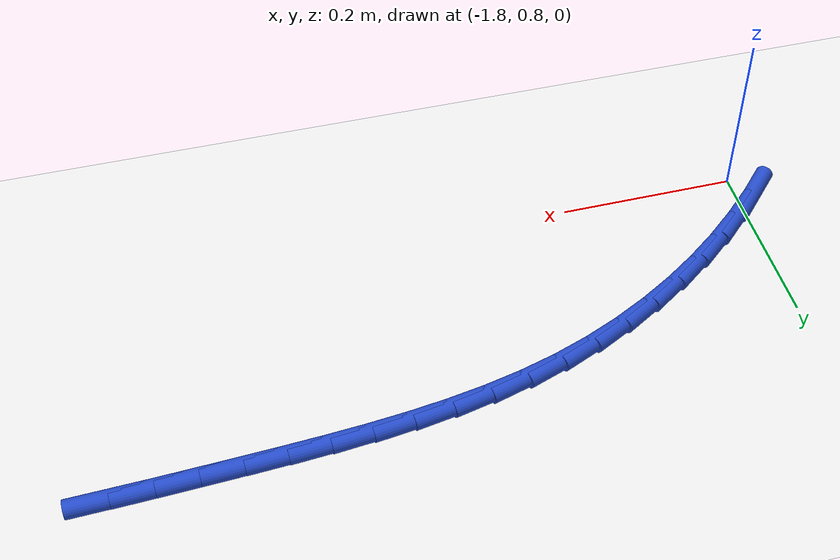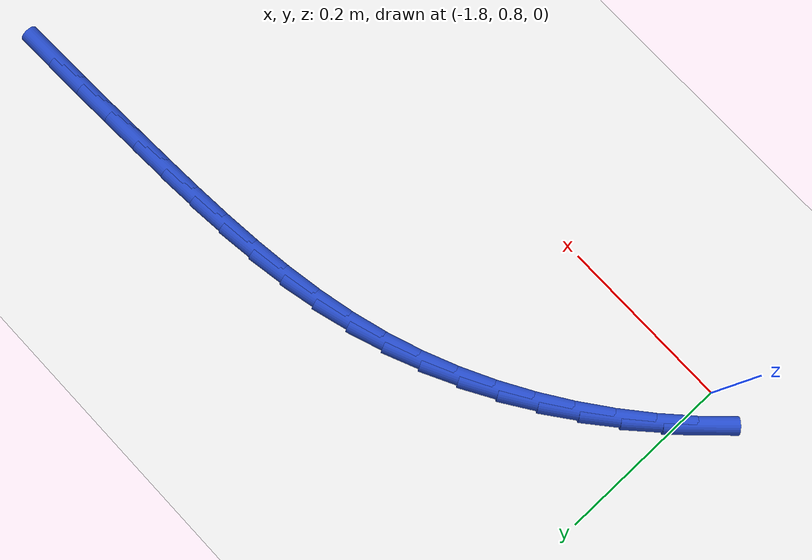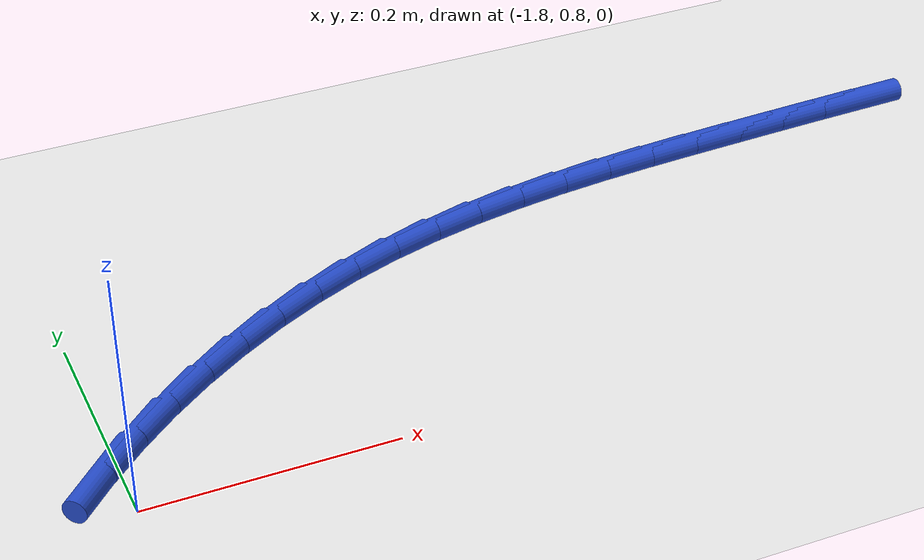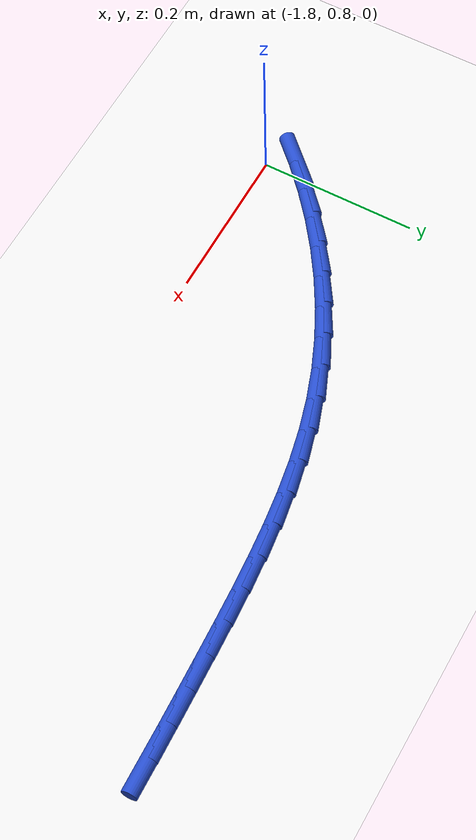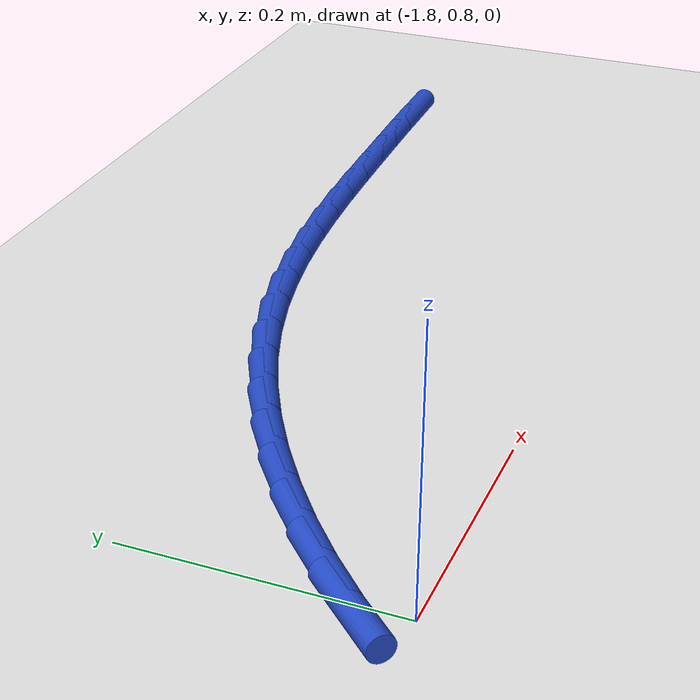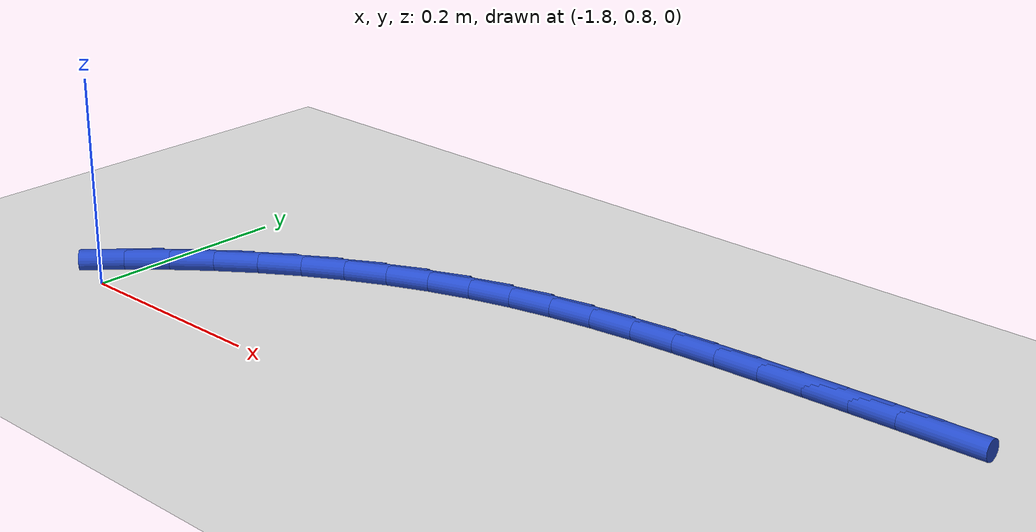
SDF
<sdf version="1.6">
 <world name="default">
  <model name="ground_plane">
   <static>1</static>
   <link name="link">
    <collision name="collision">
     <geometry><plane><normal>0 0 1</normal><size>100 100</size></plane></geometry>
     <surface><friction><ode><mu>100</mu><mu2>50</mu2></ode></friction></surface>
    </collision>
    <visual name="visual">
     <cast_shadows>0</cast_shadows>
     <geometry><plane><normal>0 0 1</normal><size>100 100</size></plane></geometry>
     <material>
      <script><uri>file://media/materials/scripts/gazebo.material</uri><name>Gazebo/WhiteGlow</name></script>
     </material>
    </visual>
   </link>
  </model>
  <model name="line">
   <link name="link_39">
    <pose>-1.0564956041749847 1.0645957667247128 0.01 0 1.57 0.029237892884742614</pose>
    <collision name="collision">
     <geometry><cylinder><radius>0.01</radius><length>0.08</length></cylinder></geometry>
    </collision>
    <visual name="visual">
     <material>
      <script><name>Gazebo/Blue</name><uri>file://media/materials/scripts/gazebo.material</uri></script>
     </material>
     <geometry><cylinder><radius>0.01</radius><length>0.08</length></cylinder></geometry>
    </visual>
   </link>
   <link name="link_40">
    <pose>-1.0999999879161808 1.0633234276373265 0.01 0 1.57 0.03891584807647052</pose>
    <collision name="collision">
     <geometry><cylinder><radius>0.01</radius><length>0.08</length></cylinder></geometry>
    </collision>
    <visual name="visual">
     <material>
      <script><name>Gazebo/Blue</name><uri>file://media/materials/scripts/gazebo.material</uri></script>
     </material>
     <geometry><cylinder><radius>0.01</radius><length>0.08</length></cylinder></geometry>
    </visual>
   </link>
   <link name="link_41">
    <pose>-1.1435478818544216 1.0616278683835996 0.01 0 1.57 0.04297399263906294</pose>
    <collision name="collision">
     <geometry><cylinder><radius>0.01</radius><length>0.08</length></cylinder></geometry>
    </collision>
    <visual name="visual">
     <material>
      <script><name>Gazebo/Blue</name><uri>file://media/materials/scripts/gazebo.material</uri></script>
     </material>
     <geometry><cylinder><radius>0.01</radius><length>0.08</length></cylinder></geometry>
    </visual>
   </link>
   <link name="link_42">
    <pose>-1.1870667485631647 1.0597565368148603 0.01 0 1.57 0.04549724654629769</pose>
    <collision name="collision">
     <geometry><cylinder><radius>0.01</radius><length>0.08</length></cylinder></geometry>
    </collision>
    <visual name="visual">
     <material>
      <script><name>Gazebo/Blue</name><uri>file://media/materials/scripts/gazebo.material</uri></script>
     </material>
     <geometry><cylinder><radius>0.01</radius><length>0.08</length></cylinder></geometry>
    </visual>
   </link>
   <link name="link_43">
    <pose>-1.2304833298310858 1.0577798378025063 0.01 0 1.57 0.054688654376996035</pose>
    <collision name="collision">
     <geometry><cylinder><radius>0.01</radius><length>0.08</length></cylinder></geometry>
    </collision>
    <visual name="visual">
     <material>
      <script><name>Gazebo/Blue</name><uri>file://media/materials/scripts/gazebo.material</uri></script>
     </material>
     <geometry><cylinder><radius>0.01</radius><length>0.08</length></cylinder></geometry>
    </visual>
   </link>
   <link name="link_44">
    <pose>-1.27372292047146 1.055412762448987 0.01 0 1.57 0.071640880850923</pose>
    <collision name="collision">
     <geometry><cylinder><radius>0.01</radius><length>0.08</length></cylinder></geometry>
    </collision>
    <visual name="visual">
     <material>
      <script><name>Gazebo/Blue</name><uri>file://media/materials/scripts/gazebo.material</uri></script>
     </material>
     <geometry><cylinder><radius>0.01</radius><length>0.08</length></cylinder></geometry>
    </visual>
   </link>
   <link name="link_45">
    <pose>-1.31671064228105 1.052327804623942 0.01 0 1.57 0.09651708608216648</pose>
    <collision name="collision">
     <geometry><cylinder><radius>0.01</radius><length>0.08</length></cylinder></geometry>
    </collision>
    <visual name="visual">
     <material>
      <script><name>Gazebo/Blue</name><uri>file://media/materials/scripts/gazebo.material</uri></script>
     </material>
     <geometry><cylinder><radius>0.01</radius><length>0.08</length></cylinder></geometry>
    </visual>
   </link>
   <link name="link_46">
    <pose>-1.359371617056619 1.048197458197012 0.01 0 1.57 0.12949666245008654</pose>
    <collision name="collision">
     <geometry><cylinder><radius>0.01</radius><length>0.08</length></cylinder></geometry>
    </collision>
    <visual name="visual">
     <material>
      <script><name>Gazebo/Blue</name><uri>file://media/materials/scripts/gazebo.material</uri></script>
     </material>
     <geometry><cylinder><radius>0.01</radius><length>0.08</length></cylinder></geometry>
    </visual>
   </link>
   <link name="link_47">
    <pose>-1.4016309665949298 1.0426942170378364 0.01 0 1.57 0.17072830940406278</pose>
    <collision name="collision">
     <geometry><cylinder><radius>0.01</radius><length>0.08</length></cylinder></geometry>
    </collision>
    <visual name="visual">
     <material>
      <script><name>Gazebo/Blue</name><uri>file://media/materials/scripts/gazebo.material</uri></script>
     </material>
     <geometry><cylinder><radius>0.01</radius><length>0.08</length></cylinder></geometry>
    </visual>
   </link>
   <link name="link_48">
    <pose>-1.443413812692747 1.0354905750160561 0.01 0 1.57 0.22026313822881807</pose>
    <collision name="collision">
     <geometry><cylinder><radius>0.01</radius><length>0.08</length></cylinder></geometry>
    </collision>
    <visual name="visual">
     <material>
      <script><name>Gazebo/Blue</name><uri>file://media/materials/scripts/gazebo.material</uri></script>
     </material>
     <geometry><cylinder><radius>0.01</radius><length>0.08</length></cylinder></geometry>
    </visual>
   </link>
   <link name="link_49">
    <pose>-1.4846452771468315 1.0262590260013114 0.01 0 1.57 0.27796891463724066</pose>
    <collision name="collision">
     <geometry><cylinder><radius>0.01</radius><length>0.08</length></cylinder></geometry>
    </collision>
    <visual name="visual">
     <material>
      <script><name>Gazebo/Blue</name><uri>file://media/materials/scripts/gazebo.material</uri></script>
     </material>
     <geometry><cylinder><radius>0.01</radius><length>0.08</length></cylinder></geometry>
    </visual>
   </link>
   <link name="link_50">
    <pose>-1.5252504817539485 1.0146720638632427 0.01 0 1.57 0.34258813516011516</pose>
    <collision name="collision">
     <geometry><cylinder><radius>0.01</radius><length>0.08</length></cylinder></geometry>
    </collision>
    <visual name="visual">
     <material>
      <script><name>Gazebo/Blue</name><uri>file://media/materials/scripts/gazebo.material</uri></script>
     </material>
     <geometry><cylinder><radius>0.01</radius><length>0.08</length></cylinder></geometry>
    </visual>
   </link>
   <link name="link_51">
    <pose>-1.5651508058358794 1.0004415517963638 0.01 0 1.57 0.40736102534026614</pose>
    <collision name="collision">
     <geometry><cylinder><radius>0.01</radius><length>0.08</length></cylinder></geometry>
    </collision>
    <visual name="visual">
     <material>
      <script><name>Gazebo/Blue</name><uri>file://media/materials/scripts/gazebo.material</uri></script>
     </material>
     <geometry><cylinder><radius>0.01</radius><length>0.08</length></cylinder></geometry>
    </visual>
   </link>
   <link name="link_52">
    <pose>-1.604239536681095 0.9835748698366559 0.01 0 1.57 0.4695504754755869</pose>
    <collision name="collision">
     <geometry><cylinder><radius>0.01</radius><length>0.08</length></cylinder></geometry>
    </collision>
    <visual name="visual">
     <material>
      <script><name>Gazebo/Blue</name><uri>file://media/materials/scripts/gazebo.material</uri></script>
     </material>
     <geometry><cylinder><radius>0.01</radius><length>0.08</length></cylinder></geometry>
    </visual>
   </link>
   <link name="link_53">
    <pose>-1.6423971992710806 0.9642136523337367 0.01 0 1.57 0.5294338836169007</pose>
    <collision name="collision">
     <geometry><cylinder><radius>0.01</radius><length>0.08</length></cylinder></geometry>
    </collision>
    <visual name="visual">
     <material>
      <script><name>Gazebo/Blue</name><uri>file://media/materials/scripts/gazebo.material</uri></script>
     </material>
     <geometry><cylinder><radius>0.01</radius><length>0.08</length></cylinder></geometry>
    </visual>
   </link>
   <link name="link_54">
    <pose>-1.6795042546225791 0.9425002065204494 0.01 0 1.57 0.5873362842401203</pose>
    <collision name="collision">
     <geometry><cylinder><radius>0.01</radius><length>0.08</length></cylinder></geometry>
    </collision>
    <visual name="visual">
     <material>
      <script><name>Gazebo/Blue</name><uri>file://media/materials/scripts/gazebo.material</uri></script>
     </material>
     <geometry><cylinder><radius>0.01</radius><length>0.08</length></cylinder></geometry>
    </visual>
   </link>
   <link name="link_55">
    <pose>-1.715441163752336 0.9185768396296369 0.01 0 1.57 0.6436038562018128</pose>
    <collision name="collision">
     <geometry><cylinder><radius>0.01</radius><length>0.08</length></cylinder></geometry>
    </collision>
    <visual name="visual">
     <material>
      <script><name>Gazebo/Blue</name><uri>file://media/materials/scripts/gazebo.material</uri></script>
     </material>
     <geometry><cylinder><radius>0.01</radius><length>0.08</length></cylinder></geometry>
    </visual>
   </link>
   <link name="link_56">
    <pose>-1.7500883876770943 0.8925858588941408 0.01 0 1.57 0.6985957467551067</pose>
    <collision name="collision">
     <geometry><cylinder><radius>0.01</radius><length>0.08</length></cylinder></geometry>
    </collision>
    <visual name="visual">
     <material>
      <script><name>Gazebo/Blue</name><uri>file://media/materials/scripts/gazebo.material</uri></script>
     </material>
     <geometry><cylinder><radius>0.01</radius><length>0.08</length></cylinder></geometry>
    </visual>
   </link>
   <link name="link_57">
    <pose>-1.7833263874135987 0.8646695715468049 0.01 0 1.57 0.7526790482722773</pose>
    <collision name="collision">
     <geometry><cylinder><radius>0.01</radius><length>0.08</length></cylinder></geometry>
    </collision>
    <visual name="visual">
     <material>
      <script><name>Gazebo/Blue</name><uri>file://media/materials/scripts/gazebo.material</uri></script>
     </material>
     <geometry><cylinder><radius>0.01</radius><length>0.08</length></cylinder></geometry>
    </visual>
   </link>
   <link name="link_58">
    <pose>-1.8150356239785936 0.8349702848204716 0.01 0 1.57 0.8062163610661034</pose>
    <collision name="collision">
     <geometry><cylinder><radius>0.01</radius><length>0.08</length></cylinder></geometry>
    </collision>
    <visual name="visual">
     <material>
      <script><name>Gazebo/Blue</name><uri>file://media/materials/scripts/gazebo.material</uri></script>
     </material>
     <geometry><cylinder><radius>0.01</radius><length>0.08</length></cylinder></geometry>
    </visual>
   </link>
  </model>
 </world>
</sdf>
